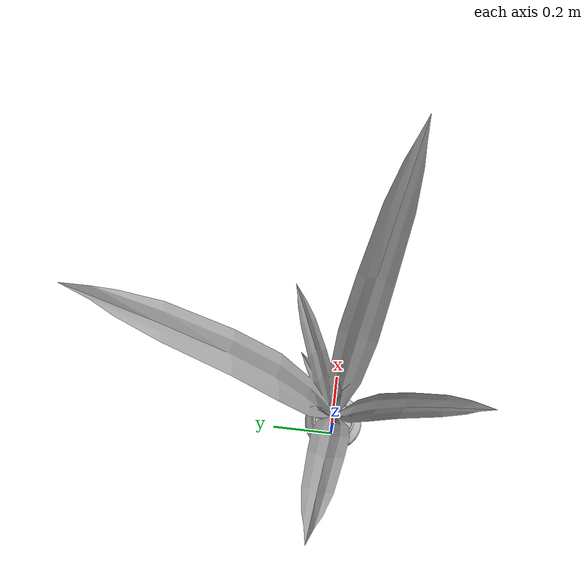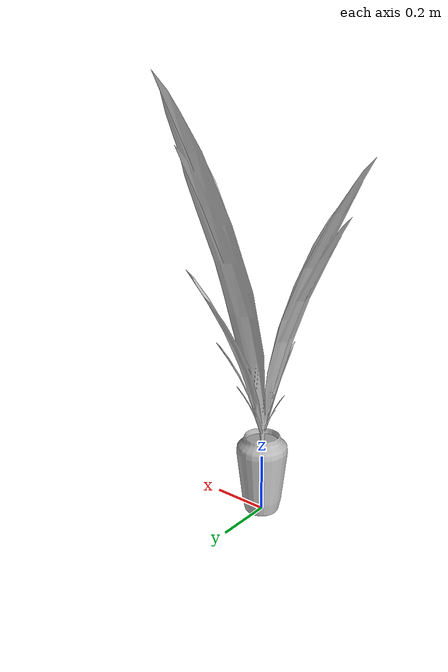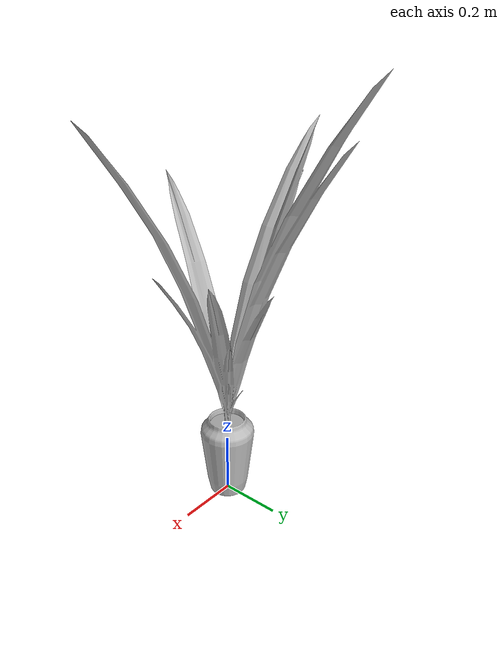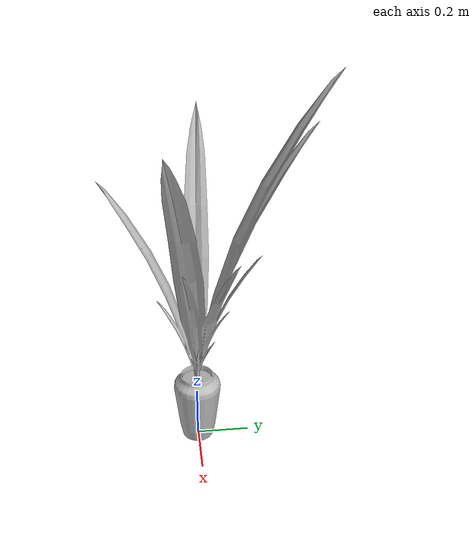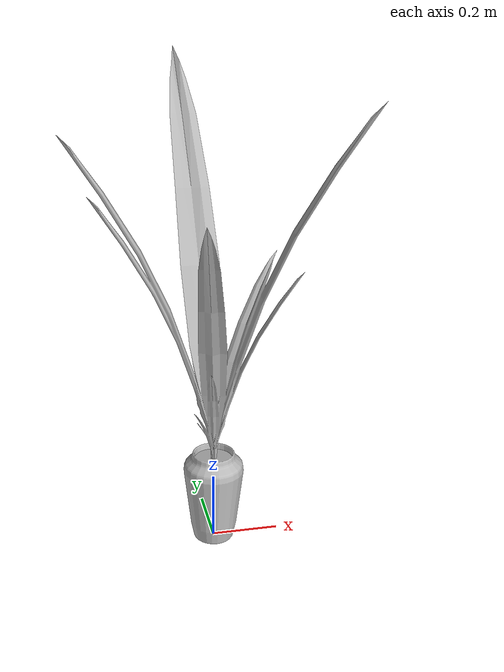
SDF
<?xml version='1.0'?>
<sdf version='1.4'>
  <model name='237'>
    <pose>0 0 0 0 0 0</pose>
    <static>true</static>
    <link name='link'>
      <collision name='collision'>
        <pose>0 0 0 0 0 0</pose>
        <geometry>
          <box>
            <size>0.839248 0.825384 2</size>
          </box>
        </geometry>
      </collision>
      <visual name='visual'>
        <pose>0 0 0 0 0 0</pose>
        <geometry>
          <mesh><uri>model://237/237.dae</uri></mesh>
        </geometry>
      </visual>
    </link>
  </model>
</sdf>
